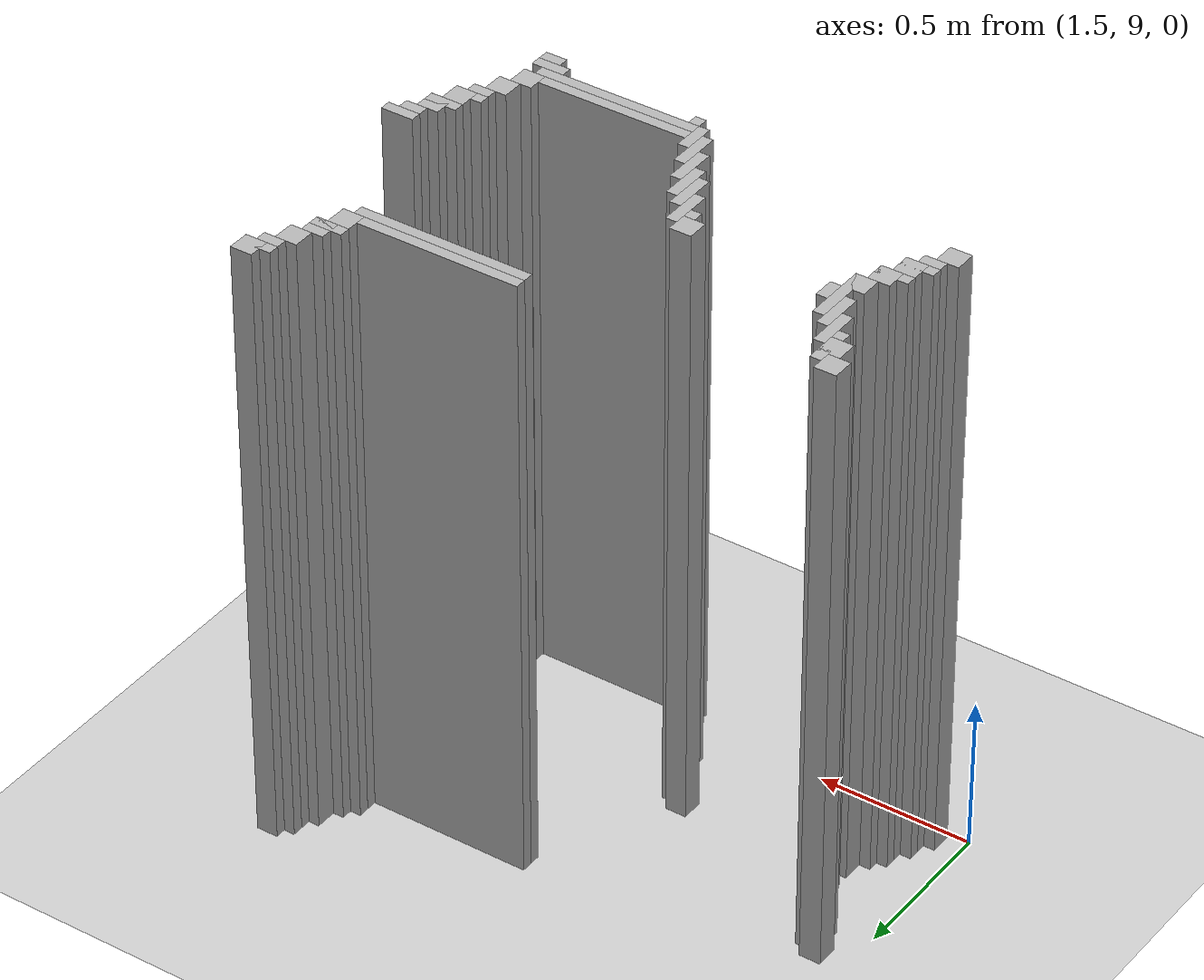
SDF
<sdf version="1.6">
 <world name="slam_world">
  <model name="ground_plane">
   <static>true</static>
   <link name="link">
    <collision name="collision">
     <geometry><plane><normal>0 0 1</normal><size>100 100</size></plane></geometry>
    </collision>
    <visual name="visual">
     <geometry><plane><normal>0 0 1</normal><size>100 100</size></plane></geometry>
     <material>
      <ambient>0.8 0.8 0.8 1</ambient>
      <diffuse>0.8 0.8 0.8 1</diffuse>
      <specular>0.8 0.8 0.8 1</specular>
     </material>
    </visual>
   </link>
  </model>
  <model name="wall_2424">
   <static>true</static>
   <pose>3.167053364269141 10.058004640371228 1.0 0 0 0</pose>
   <link name="link">
    <collision name="collision">
     <geometry><box><size>0.06960556844547564 0.06960556844547564 2.0</size></box></geometry>
    </collision>
    <visual name="visual">
     <geometry><box><size>0.06960556844547564 0.06960556844547564 2.0</size></box></geometry>
     <material><ambient>0.5 0.5 0.5 1</ambient><diffuse>0.7 0.7 0.7 1</diffuse></material>
    </visual>
   </link>
  </model>
  <model name="wall_2440">
   <static>true</static>
   <pose>3.1496519721577725 10.04060324825986 1.0 0 0 0</pose>
   <link name="link">
    <collision name="collision">
     <geometry><box><size>0.10440835266821345 0.03480278422273782 2.0</size></box></geometry>
    </collision>
    <visual name="visual">
     <geometry><box><size>0.10440835266821345 0.03480278422273782 2.0</size></box></geometry>
     <material><ambient>0.5 0.5 0.5 1</ambient><diffuse>0.7 0.7 0.7 1</diffuse></material>
    </visual>
   </link>
  </model>
  <model name="wall_2455">
   <static>true</static>
   <pose>3.1322505800464038 10.005800464037122 1.0 0 0 0</pose>
   <link name="link">
    <collision name="collision">
     <geometry><box><size>0.06960556844547564 0.03480278422273782 2.0</size></box></geometry>
    </collision>
    <visual name="visual">
     <geometry><box><size>0.06960556844547564 0.03480278422273782 2.0</size></box></geometry>
     <material><ambient>0.5 0.5 0.5 1</ambient><diffuse>0.7 0.7 0.7 1</diffuse></material>
    </visual>
   </link>
  </model>
  <model name="wall_2465">
   <static>true</static>
   <pose>3.097447795823666 9.953596287703016 1.0 0 0 0</pose>
   <link name="link">
    <collision name="collision">
     <geometry><box><size>0.06960556844547564 0.06960556844547564 2.0</size></box></geometry>
    </collision>
    <visual name="visual">
     <geometry><box><size>0.06960556844547564 0.06960556844547564 2.0</size></box></geometry>
     <material><ambient>0.5 0.5 0.5 1</ambient><diffuse>0.7 0.7 0.7 1</diffuse></material>
    </visual>
   </link>
  </model>
  <model name="wall_2481">
   <static>true</static>
   <pose>3.062645011600928 9.88399071925754 1.0 0 0 0</pose>
   <link name="link">
    <collision name="collision">
     <geometry><box><size>0.06960556844547564 0.06960556844547564 2.0</size></box></geometry>
    </collision>
    <visual name="visual">
     <geometry><box><size>0.06960556844547564 0.06960556844547564 2.0</size></box></geometry>
     <material><ambient>0.5 0.5 0.5 1</ambient><diffuse>0.7 0.7 0.7 1</diffuse></material>
    </visual>
   </link>
  </model>
  <model name="wall_2497">
   <static>true</static>
   <pose>3.045243619489559 9.86658932714617 1.0 0 0 0</pose>
   <link name="link">
    <collision name="collision">
     <geometry><box><size>0.10440835266821345 0.03480278422273782 2.0</size></box></geometry>
    </collision>
    <visual name="visual">
     <geometry><box><size>0.10440835266821345 0.03480278422273782 2.0</size></box></geometry>
     <material><ambient>0.5 0.5 0.5 1</ambient><diffuse>0.7 0.7 0.7 1</diffuse></material>
    </visual>
   </link>
  </model>
  <model name="wall_2512">
   <static>true</static>
   <pose>3.02784222737819 9.814385150812065 1.0 0 0 0</pose>
   <link name="link">
    <collision name="collision">
     <geometry><box><size>0.06960556844547564 0.06960556844547564 2.0</size></box></geometry>
    </collision>
    <visual name="visual">
     <geometry><box><size>0.06960556844547564 0.06960556844547564 2.0</size></box></geometry>
     <material><ambient>0.5 0.5 0.5 1</ambient><diffuse>0.7 0.7 0.7 1</diffuse></material>
    </visual>
   </link>
  </model>
  <model name="wall_2522">
   <static>true</static>
   <pose>2.7668213457076565 9.796983758700696 1.0 0 0 0</pose>
   <link name="link">
    <collision name="collision">
     <geometry><box><size>0.5916473317865429 0.03480278422273782 2.0</size></box></geometry>
    </collision>
    <visual name="visual">
     <geometry><box><size>0.5916473317865429 0.03480278422273782 2.0</size></box></geometry>
     <material><ambient>0.5 0.5 0.5 1</ambient><diffuse>0.7 0.7 0.7 1</diffuse></material>
    </visual>
   </link>
  </model>
  <model name="wall_2535">
   <static>true</static>
   <pose>2.7494199535962878 9.762180974477959 1.0 0 0 0</pose>
   <link name="link">
    <collision name="collision">
     <geometry><box><size>0.5568445475638051 0.03480278422273782 2.0</size></box></geometry>
    </collision>
    <visual name="visual">
     <geometry><box><size>0.5568445475638051 0.03480278422273782 2.0</size></box></geometry>
     <material><ambient>0.5 0.5 0.5 1</ambient><diffuse>0.7 0.7 0.7 1</diffuse></material>
    </visual>
   </link>
  </model>
  <model name="wall_2561">
   <static>true</static>
   <pose>1.6009280742459395 9.640371229698376 1.0 0 0 0</pose>
   <link name="link">
    <collision name="collision">
     <geometry><box><size>0.06960556844547564 0.06960556844547564 2.0</size></box></geometry>
    </collision>
    <visual name="visual">
     <geometry><box><size>0.06960556844547564 0.06960556844547564 2.0</size></box></geometry>
     <material><ambient>0.5 0.5 0.5 1</ambient><diffuse>0.7 0.7 0.7 1</diffuse></material>
    </visual>
   </link>
  </model>
  <model name="wall_2572">
   <static>true</static>
   <pose>1.6531322505800463 9.5707656612529 1.0 0 0 0</pose>
   <link name="link">
    <collision name="collision">
     <geometry><box><size>0.03480278422273782 0.13921113689095127 2.0</size></box></geometry>
    </collision>
    <visual name="visual">
     <geometry><box><size>0.03480278422273782 0.13921113689095127 2.0</size></box></geometry>
     <material><ambient>0.5 0.5 0.5 1</ambient><diffuse>0.7 0.7 0.7 1</diffuse></material>
    </visual>
   </link>
  </model>
  <model name="wall_2583">
   <static>true</static>
   <pose>1.6357308584686774 9.5707656612529 1.0 0 0 0</pose>
   <link name="link">
    <collision name="collision">
     <geometry><box><size>0.06960556844547564 0.06960556844547564 2.0</size></box></geometry>
    </collision>
    <visual name="visual">
     <geometry><box><size>0.06960556844547564 0.06960556844547564 2.0</size></box></geometry>
     <material><ambient>0.5 0.5 0.5 1</ambient><diffuse>0.7 0.7 0.7 1</diffuse></material>
    </visual>
   </link>
  </model>
  <model name="wall_2594">
   <static>true</static>
   <pose>1.6879350348027842 9.501160092807424 1.0 0 0 0</pose>
   <link name="link">
    <collision name="collision">
     <geometry><box><size>0.03480278422273782 0.13921113689095127 2.0</size></box></geometry>
    </collision>
    <visual name="visual">
     <geometry><box><size>0.03480278422273782 0.13921113689095127 2.0</size></box></geometry>
     <material><ambient>0.5 0.5 0.5 1</ambient><diffuse>0.7 0.7 0.7 1</diffuse></material>
    </visual>
   </link>
  </model>
  <model name="wall_2608">
   <static>true</static>
   <pose>1.722737819025522 9.431554524361948 1.0 0 0 0</pose>
   <link name="link">
    <collision name="collision">
     <geometry><box><size>0.03480278422273782 0.13921113689095127 2.0</size></box></geometry>
    </collision>
    <visual name="visual">
     <geometry><box><size>0.03480278422273782 0.13921113689095127 2.0</size></box></geometry>
     <material><ambient>0.5 0.5 0.5 1</ambient><diffuse>0.7 0.7 0.7 1</diffuse></material>
    </visual>
   </link>
  </model>
  <model name="wall_2619">
   <static>true</static>
   <pose>1.75754060324826 9.361948955916473 1.0 0 0 0</pose>
   <link name="link">
    <collision name="collision">
     <geometry><box><size>0.03480278422273782 0.2088167053364269 2.0</size></box></geometry>
    </collision>
    <visual name="visual">
     <geometry><box><size>0.03480278422273782 0.2088167053364269 2.0</size></box></geometry>
     <material><ambient>0.5 0.5 0.5 1</ambient><diffuse>0.7 0.7 0.7 1</diffuse></material>
    </visual>
   </link>
  </model>
  <model name="wall_2633">
   <static>true</static>
   <pose>1.7923433874709975 9.361948955916473 1.0 0 0 0</pose>
   <link name="link">
    <collision name="collision">
     <geometry><box><size>0.03480278422273782 0.06960556844547564 2.0</size></box></geometry>
    </collision>
    <visual name="visual">
     <geometry><box><size>0.03480278422273782 0.06960556844547564 2.0</size></box></geometry>
     <material><ambient>0.5 0.5 0.5 1</ambient><diffuse>0.7 0.7 0.7 1</diffuse></material>
    </visual>
   </link>
  </model>
  <model name="wall_2646">
   <static>true</static>
   <pose>2.262180974477958 9.327146171693736 1.0 0 0 0</pose>
   <link name="link">
    <collision name="collision">
     <geometry><box><size>0.06960556844547564 0.06960556844547564 2.0</size></box></geometry>
    </collision>
    <visual name="visual">
     <geometry><box><size>0.06960556844547564 0.06960556844547564 2.0</size></box></geometry>
     <material><ambient>0.5 0.5 0.5 1</ambient><diffuse>0.7 0.7 0.7 1</diffuse></material>
    </visual>
   </link>
  </model>
  <model name="wall_2657">
   <static>true</static>
   <pose>1.740139211136891 9.292343387470996 1.0 0 0 0</pose>
   <link name="link">
    <collision name="collision">
     <geometry><box><size>0.06960556844547564 0.06960556844547564 2.0</size></box></geometry>
    </collision>
    <visual name="visual">
     <geometry><box><size>0.06960556844547564 0.06960556844547564 2.0</size></box></geometry>
     <material><ambient>0.5 0.5 0.5 1</ambient><diffuse>0.7 0.7 0.7 1</diffuse></material>
    </visual>
   </link>
  </model>
  <model name="wall_2658">
   <static>true</static>
   <pose>2.3143851508120648 9.257540603248259 1.0 0 0 0</pose>
   <link name="link">
    <collision name="collision">
     <geometry><box><size>0.03480278422273782 0.13921113689095127 2.0</size></box></geometry>
    </collision>
    <visual name="visual">
     <geometry><box><size>0.03480278422273782 0.13921113689095127 2.0</size></box></geometry>
     <material><ambient>0.5 0.5 0.5 1</ambient><diffuse>0.7 0.7 0.7 1</diffuse></material>
    </visual>
   </link>
  </model>
  <model name="wall_2659">
   <static>true</static>
   <pose>3.219257540603248 9.309744779582367 1.0 0 0 0</pose>
   <link name="link">
    <collision name="collision">
     <geometry><box><size>0.10440835266821345 0.03480278422273782 2.0</size></box></geometry>
    </collision>
    <visual name="visual">
     <geometry><box><size>0.10440835266821345 0.03480278422273782 2.0</size></box></geometry>
     <material><ambient>0.5 0.5 0.5 1</ambient><diffuse>0.7 0.7 0.7 1</diffuse></material>
    </visual>
   </link>
  </model>
  <model name="wall_2675">
   <static>true</static>
   <pose>2.296983758700696 9.274941995359628 1.0 0 0 0</pose>
   <link name="link">
    <collision name="collision">
     <geometry><box><size>0.06960556844547564 0.03480278422273782 2.0</size></box></geometry>
    </collision>
    <visual name="visual">
     <geometry><box><size>0.06960556844547564 0.03480278422273782 2.0</size></box></geometry>
     <material><ambient>0.5 0.5 0.5 1</ambient><diffuse>0.7 0.7 0.7 1</diffuse></material>
    </visual>
   </link>
  </model>
  <model name="wall_2676">
   <static>true</static>
   <pose>3.201856148491879 9.274941995359628 1.0 0 0 0</pose>
   <link name="link">
    <collision name="collision">
     <geometry><box><size>0.06960556844547564 0.03480278422273782 2.0</size></box></geometry>
    </collision>
    <visual name="visual">
     <geometry><box><size>0.06960556844547564 0.03480278422273782 2.0</size></box></geometry>
     <material><ambient>0.5 0.5 0.5 1</ambient><diffuse>0.7 0.7 0.7 1</diffuse></material>
    </visual>
   </link>
  </model>
  <model name="wall_2688">
   <static>true</static>
   <pose>1.705336426914153 9.222737819025522 1.0 0 0 0</pose>
   <link name="link">
    <collision name="collision">
     <geometry><box><size>0.06960556844547564 0.06960556844547564 2.0</size></box></geometry>
    </collision>
    <visual name="visual">
     <geometry><box><size>0.06960556844547564 0.06960556844547564 2.0</size></box></geometry>
     <material><ambient>0.5 0.5 0.5 1</ambient><diffuse>0.7 0.7 0.7 1</diffuse></material>
    </visual>
   </link>
  </model>
  <model name="wall_2689">
   <static>true</static>
   <pose>2.3491879350348026 9.187935034802784 1.0 0 0 0</pose>
   <link name="link">
    <collision name="collision">
     <geometry><box><size>0.03480278422273782 0.13921113689095127 2.0</size></box></geometry>
    </collision>
    <visual name="visual">
     <geometry><box><size>0.03480278422273782 0.13921113689095127 2.0</size></box></geometry>
     <material><ambient>0.5 0.5 0.5 1</ambient><diffuse>0.7 0.7 0.7 1</diffuse></material>
    </visual>
   </link>
  </model>
  <model name="wall_2690">
   <static>true</static>
   <pose>3.167053364269141 9.222737819025522 1.0 0 0 0</pose>
   <link name="link">
    <collision name="collision">
     <geometry><box><size>0.06960556844547564 0.06960556844547564 2.0</size></box></geometry>
    </collision>
    <visual name="visual">
     <geometry><box><size>0.06960556844547564 0.06960556844547564 2.0</size></box></geometry>
     <material><ambient>0.5 0.5 0.5 1</ambient><diffuse>0.7 0.7 0.7 1</diffuse></material>
    </visual>
   </link>
  </model>
  <model name="wall_2706">
   <static>true</static>
   <pose>1.6879350348027842 9.205336426914153 1.0 0 0 0</pose>
   <link name="link">
    <collision name="collision">
     <geometry><box><size>0.10440835266821345 0.03480278422273782 2.0</size></box></geometry>
    </collision>
    <visual name="visual">
     <geometry><box><size>0.10440835266821345 0.03480278422273782 2.0</size></box></geometry>
     <material><ambient>0.5 0.5 0.5 1</ambient><diffuse>0.7 0.7 0.7 1</diffuse></material>
    </visual>
   </link>
  </model>
  <model name="wall_2707">
   <static>true</static>
   <pose>2.3839907192575405 9.153132250580047 1.0 0 0 0</pose>
   <link name="link">
    <collision name="collision">
     <geometry><box><size>0.03480278422273782 0.13921113689095127 2.0</size></box></geometry>
    </collision>
    <visual name="visual">
     <geometry><box><size>0.03480278422273782 0.13921113689095127 2.0</size></box></geometry>
     <material><ambient>0.5 0.5 0.5 1</ambient><diffuse>0.7 0.7 0.7 1</diffuse></material>
    </visual>
   </link>
  </model>
  <model name="wall_2708">
   <static>true</static>
   <pose>3.1496519721577725 9.205336426914153 1.0 0 0 0</pose>
   <link name="link">
    <collision name="collision">
     <geometry><box><size>0.10440835266821345 0.03480278422273782 2.0</size></box></geometry>
    </collision>
    <visual name="visual">
     <geometry><box><size>0.10440835266821345 0.03480278422273782 2.0</size></box></geometry>
     <material><ambient>0.5 0.5 0.5 1</ambient><diffuse>0.7 0.7 0.7 1</diffuse></material>
    </visual>
   </link>
  </model>
  <model name="wall_2723">
   <static>true</static>
   <pose>1.6705336426914152 9.153132250580047 1.0 0 0 0</pose>
   <link name="link">
    <collision name="collision">
     <geometry><box><size>0.06960556844547564 0.06960556844547564 2.0</size></box></geometry>
    </collision>
    <visual name="visual">
     <geometry><box><size>0.06960556844547564 0.06960556844547564 2.0</size></box></geometry>
     <material><ambient>0.5 0.5 0.5 1</ambient><diffuse>0.7 0.7 0.7 1</diffuse></material>
    </visual>
   </link>
  </model>
  <model name="wall_2724">
   <static>true</static>
   <pose>3.1322505800464038 9.153132250580047 1.0 0 0 0</pose>
   <link name="link">
    <collision name="collision">
     <geometry><box><size>0.06960556844547564 0.06960556844547564 2.0</size></box></geometry>
    </collision>
    <visual name="visual">
     <geometry><box><size>0.06960556844547564 0.06960556844547564 2.0</size></box></geometry>
     <material><ambient>0.5 0.5 0.5 1</ambient><diffuse>0.7 0.7 0.7 1</diffuse></material>
    </visual>
   </link>
  </model>
  <model name="wall_2736">
   <static>true</static>
   <pose>1.6531322505800463 9.135730858468676 1.0 0 0 0</pose>
   <link name="link">
    <collision name="collision">
     <geometry><box><size>0.10440835266821345 0.03480278422273782 2.0</size></box></geometry>
    </collision>
    <visual name="visual">
     <geometry><box><size>0.10440835266821345 0.03480278422273782 2.0</size></box></geometry>
     <material><ambient>0.5 0.5 0.5 1</ambient><diffuse>0.7 0.7 0.7 1</diffuse></material>
    </visual>
   </link>
  </model>
  <model name="wall_2737">
   <static>true</static>
   <pose>2.4187935034802783 9.08352668213457 1.0 0 0 0</pose>
   <link name="link">
    <collision name="collision">
     <geometry><box><size>0.03480278422273782 0.13921113689095127 2.0</size></box></geometry>
    </collision>
    <visual name="visual">
     <geometry><box><size>0.03480278422273782 0.13921113689095127 2.0</size></box></geometry>
     <material><ambient>0.5 0.5 0.5 1</ambient><diffuse>0.7 0.7 0.7 1</diffuse></material>
    </visual>
   </link>
  </model>
  <model name="wall_2738">
   <static>true</static>
   <pose>3.1148491879350346 9.135730858468676 1.0 0 0 0</pose>
   <link name="link">
    <collision name="collision">
     <geometry><box><size>0.10440835266821345 0.03480278422273782 2.0</size></box></geometry>
    </collision>
    <visual name="visual">
     <geometry><box><size>0.10440835266821345 0.03480278422273782 2.0</size></box></geometry>
     <material><ambient>0.5 0.5 0.5 1</ambient><diffuse>0.7 0.7 0.7 1</diffuse></material>
    </visual>
   </link>
  </model>
  <model name="wall_2753">
   <static>true</static>
   <pose>1.6357308584686774 9.100928074245939 1.0 0 0 0</pose>
   <link name="link">
    <collision name="collision">
     <geometry><box><size>0.06960556844547564 0.03480278422273782 2.0</size></box></geometry>
    </collision>
    <visual name="visual">
     <geometry><box><size>0.06960556844547564 0.03480278422273782 2.0</size></box></geometry>
     <material><ambient>0.5 0.5 0.5 1</ambient><diffuse>0.7 0.7 0.7 1</diffuse></material>
    </visual>
   </link>
  </model>
  <model name="wall_2754">
   <static>true</static>
   <pose>3.097447795823666 9.100928074245939 1.0 0 0 0</pose>
   <link name="link">
    <collision name="collision">
     <geometry><box><size>0.06960556844547564 0.03480278422273782 2.0</size></box></geometry>
    </collision>
    <visual name="visual">
     <geometry><box><size>0.06960556844547564 0.03480278422273782 2.0</size></box></geometry>
     <material><ambient>0.5 0.5 0.5 1</ambient><diffuse>0.7 0.7 0.7 1</diffuse></material>
    </visual>
   </link>
  </model>
  <model name="wall_2765">
   <static>true</static>
   <pose>1.6009280742459395 9.048723897911833 1.0 0 0 0</pose>
   <link name="link">
    <collision name="collision">
     <geometry><box><size>0.06960556844547564 0.06960556844547564 2.0</size></box></geometry>
    </collision>
    <visual name="visual">
     <geometry><box><size>0.06960556844547564 0.06960556844547564 2.0</size></box></geometry>
     <material><ambient>0.5 0.5 0.5 1</ambient><diffuse>0.7 0.7 0.7 1</diffuse></material>
    </visual>
   </link>
  </model>
  <model name="wall_2766">
   <static>true</static>
   <pose>2.453596287703016 9.013921113689095 1.0 0 0 0</pose>
   <link name="link">
    <collision name="collision">
     <geometry><box><size>0.03480278422273782 0.13921113689095127 2.0</size></box></geometry>
    </collision>
    <visual name="visual">
     <geometry><box><size>0.03480278422273782 0.13921113689095127 2.0</size></box></geometry>
     <material><ambient>0.5 0.5 0.5 1</ambient><diffuse>0.7 0.7 0.7 1</diffuse></material>
    </visual>
   </link>
  </model>
  <model name="wall_2767">
   <static>true</static>
   <pose>3.062645011600928 9.048723897911833 1.0 0 0 0</pose>
   <link name="link">
    <collision name="collision">
     <geometry><box><size>0.06960556844547564 0.06960556844547564 2.0</size></box></geometry>
    </collision>
    <visual name="visual">
     <geometry><box><size>0.06960556844547564 0.06960556844547564 2.0</size></box></geometry>
     <material><ambient>0.5 0.5 0.5 1</ambient><diffuse>0.7 0.7 0.7 1</diffuse></material>
    </visual>
   </link>
  </model>
  <model name="wall_2784">
   <static>true</static>
   <pose>2.488399071925754 8.961716937354987 1.0 0 0 0</pose>
   <link name="link">
    <collision name="collision">
     <geometry><box><size>0.03480278422273782 0.10440835266821345 2.0</size></box></geometry>
    </collision>
    <visual name="visual">
     <geometry><box><size>0.03480278422273782 0.10440835266821345 2.0</size></box></geometry>
     <material><ambient>0.5 0.5 0.5 1</ambient><diffuse>0.7 0.7 0.7 1</diffuse></material>
    </visual>
   </link>
  </model>
  <model name="wall_2785">
   <static>true</static>
   <pose>3.02784222737819 8.979118329466356 1.0 0 0 0</pose>
   <link name="link">
    <collision name="collision">
     <geometry><box><size>0.06960556844547564 0.06960556844547564 2.0</size></box></geometry>
    </collision>
    <visual name="visual">
     <geometry><box><size>0.06960556844547564 0.06960556844547564 2.0</size></box></geometry>
     <material><ambient>0.5 0.5 0.5 1</ambient><diffuse>0.7 0.7 0.7 1</diffuse></material>
    </visual>
   </link>
  </model>
  <model name="wall_2801">
   <static>true</static>
   <pose>2.784222737819025 8.961716937354987 1.0 0 0 0</pose>
   <link name="link">
    <collision name="collision">
     <geometry><box><size>0.5568445475638051 0.03480278422273782 2.0</size></box></geometry>
    </collision>
    <visual name="visual">
     <geometry><box><size>0.5568445475638051 0.03480278422273782 2.0</size></box></geometry>
     <material><ambient>0.5 0.5 0.5 1</ambient><diffuse>0.7 0.7 0.7 1</diffuse></material>
    </visual>
   </link>
  </model>
  <model name="wall_2815">
   <static>true</static>
   <pose>2.7668213457076565 8.92691415313225 1.0 0 0 0</pose>
   <link name="link">
    <collision name="collision">
     <geometry><box><size>0.5220417633410672 0.03480278422273782 2.0</size></box></geometry>
    </collision>
    <visual name="visual">
     <geometry><box><size>0.5220417633410672 0.03480278422273782 2.0</size></box></geometry>
     <material><ambient>0.5 0.5 0.5 1</ambient><diffuse>0.7 0.7 0.7 1</diffuse></material>
    </visual>
   </link>
  </model>
  <model name="wall_2827">
   <static>true</static>
   <pose>2.523201856148492 8.892111368909513 1.0 0 0 0</pose>
   <link name="link">
    <collision name="collision">
     <geometry><box><size>0.03480278422273782 0.03480278422273782 2.0</size></box></geometry>
    </collision>
    <visual name="visual">
     <geometry><box><size>0.03480278422273782 0.03480278422273782 2.0</size></box></geometry>
     <material><ambient>0.5 0.5 0.5 1</ambient><diffuse>0.7 0.7 0.7 1</diffuse></material>
    </visual>
   </link>
  </model>
  <model name="wall_2828">
   <static>true</static>
   <pose>3.010440835266821 8.892111368909513 1.0 0 0 0</pose>
   <link name="link">
    <collision name="collision">
     <geometry><box><size>0.10440835266821345 0.03480278422273782 2.0</size></box></geometry>
    </collision>
    <visual name="visual">
     <geometry><box><size>0.10440835266821345 0.03480278422273782 2.0</size></box></geometry>
     <material><ambient>0.5 0.5 0.5 1</ambient><diffuse>0.7 0.7 0.7 1</diffuse></material>
    </visual>
   </link>
  </model>
  <model name="wall_2846">
   <static>true</static>
   <pose>3.02784222737819 8.857308584686775 1.0 0 0 0</pose>
   <link name="link">
    <collision name="collision">
     <geometry><box><size>0.06960556844547564 0.03480278422273782 2.0</size></box></geometry>
    </collision>
    <visual name="visual">
     <geometry><box><size>0.06960556844547564 0.03480278422273782 2.0</size></box></geometry>
     <material><ambient>0.5 0.5 0.5 1</ambient><diffuse>0.7 0.7 0.7 1</diffuse></material>
    </visual>
   </link>
  </model>
 </world>
</sdf>
